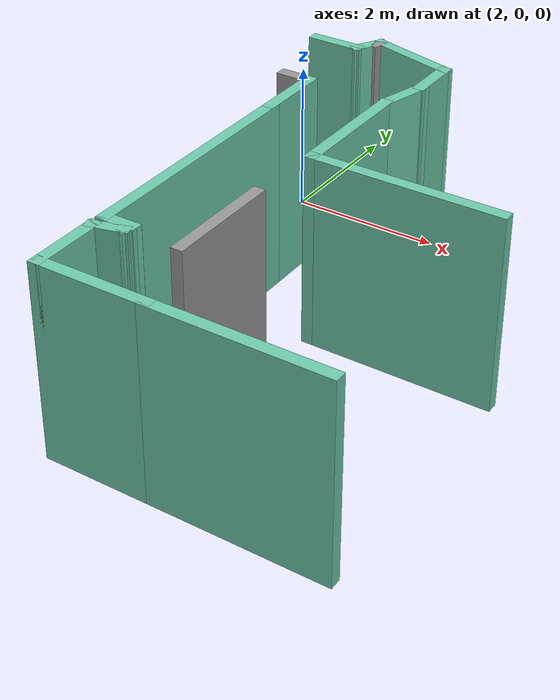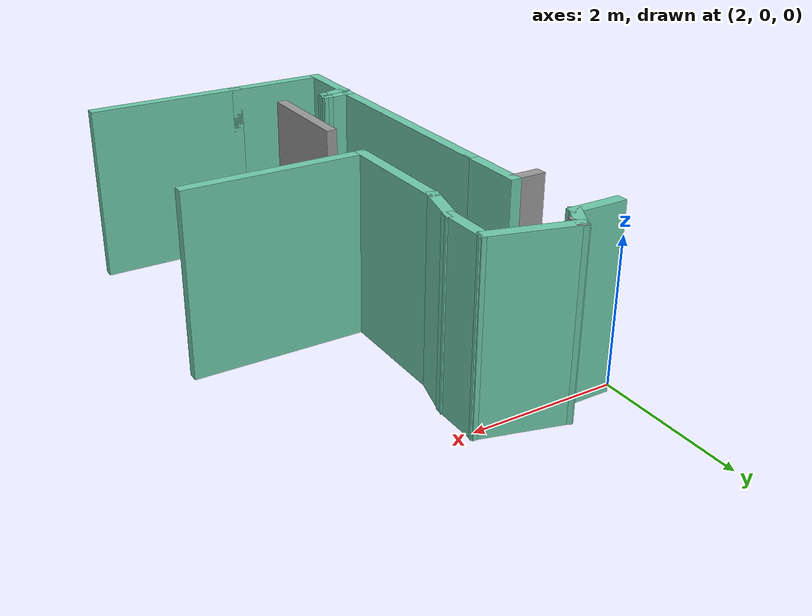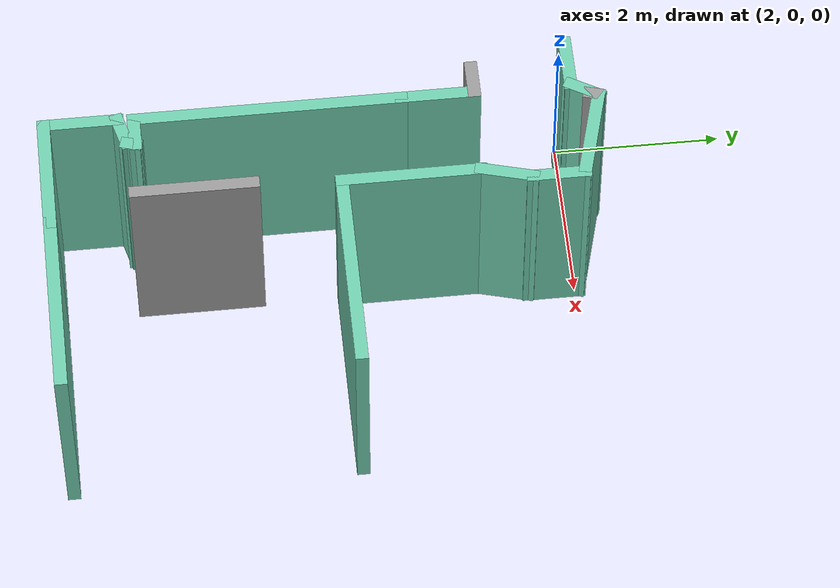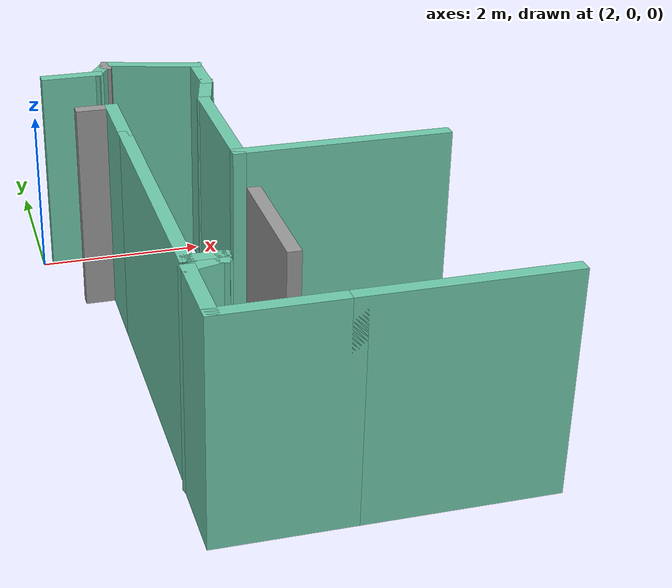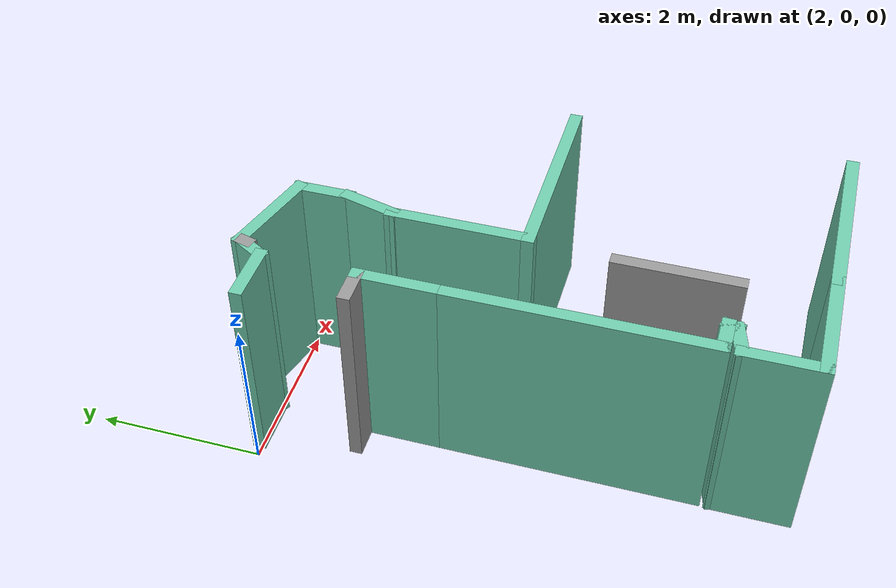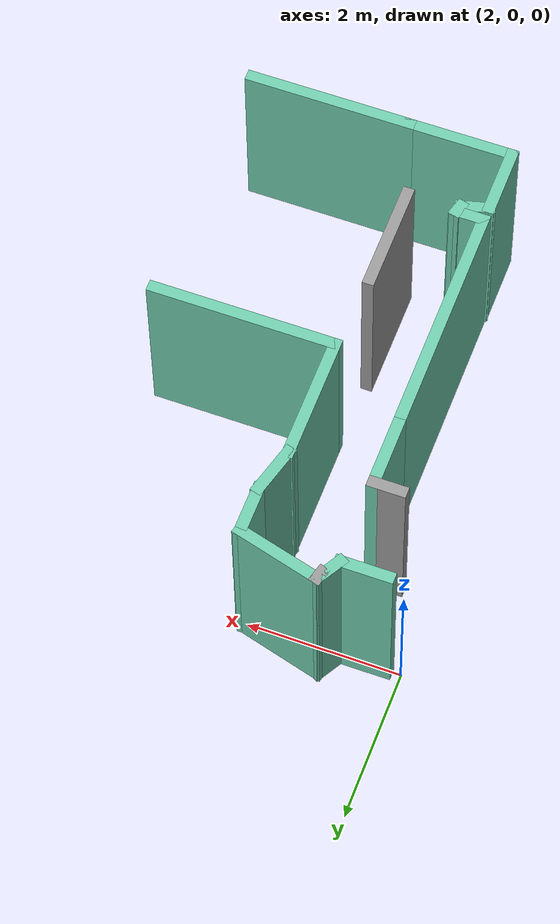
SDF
<sdf version="1.6">
 <world name="default">
  <model name="map_3">
   <pose>0.639107 -0.35531 0 0 -0 0</pose>
   <link name="Wall_100">
    <collision name="Wall_100_Collision">
     <geometry><box><size>1.75 0.15 2.5</size></box></geometry>
     <pose>0 0 1.25 0 -0 0</pose>
    </collision>
    <visual name="Wall_100_Visual">
     <pose>0 0 1.25 0 -0 0</pose>
     <geometry><box><size>1.75 0.15 2.5</size></box></geometry>
     <material>
      <script><uri>file://media/materials/scripts/gazebo.material</uri><name>Gazebo/Grey</name></script>
      <ambient>0.435294 0.796078 0.67451 1</ambient>
     </material>
     <meta><layer>0</layer></meta>
    </visual>
    <pose>3.22626 -1.57739 0 0 -0 1.5708</pose>
   </link>
   <link name="Wall_101">
    <collision name="Wall_101_Collision">
     <geometry><box><size>0.75 0.15 2.5</size></box></geometry>
     <pose>0 0 1.25 0 -0 0</pose>
    </collision>
    <visual name="Wall_101_Visual">
     <pose>0 0 1.25 0 -0 0</pose>
     <geometry><box><size>0.75 0.15 2.5</size></box></geometry>
     <material>
      <script><uri>file://media/materials/scripts/gazebo.material</uri><name>Gazebo/Grey</name></script>
      <ambient>0.435294 0.796078 0.67451 1</ambient>
     </material>
     <meta><layer>0</layer></meta>
    </visual>
    <pose>3.30391 -0.487613 0 0 -0 1.309</pose>
   </link>
   <link name="Wall_102">
    <collision name="Wall_102_Collision">
     <geometry><box><size>0.75 0.15 2.5</size></box></geometry>
     <pose>0 0 1.25 0 -0 0</pose>
    </collision>
    <visual name="Wall_102_Visual">
     <pose>0 0 1.25 0 -0 0</pose>
     <geometry><box><size>0.75 0.15 2.5</size></box></geometry>
     <material>
      <script><uri>file://media/materials/scripts/gazebo.material</uri><name>Gazebo/Grey</name></script>
      <ambient>0.435294 0.796078 0.67451 1</ambient>
     </material>
     <meta><layer>0</layer></meta>
    </visual>
    <pose>3.38155 0.102165 0 0 -0 1.5708</pose>
   </link>
   <link name="Wall_103">
    <collision name="Wall_103_Collision">
     <geometry><box><size>1.25 0.15 2.5</size></box></geometry>
     <pose>0 0 1.25 0 -0 0</pose>
    </collision>
    <visual name="Wall_103_Visual">
     <pose>0 0 1.25 0 -0 0</pose>
     <geometry><box><size>1.25 0.15 2.5</size></box></geometry>
     <material>
      <script><uri>file://media/materials/scripts/gazebo.material</uri><name>Gazebo/Grey</name></script>
      <ambient>0.435294 0.796078 0.67451 1</ambient>
     </material>
     <meta><layer>0</layer></meta>
    </visual>
    <pose>2.85029 0.544515 0 0 -0 2.87979</pose>
   </link>
   <link name="Wall_104">
    <collision name="Wall_104_Collision">
     <geometry><box><size>0.25 0.15 2.5</size></box></geometry>
     <pose>0 0 1.25 0 -0 0</pose>
    </collision>
    <visual name="Wall_104_Visual">
     <pose>0 0 1.25 0 -0 0</pose>
     <geometry><box><size>0.25 0.15 2.5</size></box></geometry>
     <material>
      <script><uri>file://media/materials/scripts/gazebo.material</uri><name>Gazebo/Grey</name></script>
      <ambient>1 1 1 1</ambient>
     </material>
     <meta><layer>0</layer></meta>
    </visual>
    <pose>2.30609 0.638569 0 0 -0 -1.8326</pose>
   </link>
   <link name="Wall_108">
    <collision name="Wall_108_Collision">
     <geometry><box><size>0.5 0.15 2.5</size></box></geometry>
     <pose>0 0 1.25 0 -0 0</pose>
    </collision>
    <visual name="Wall_108_Visual">
     <pose>0 0 1.25 0 -0 0</pose>
     <geometry><box><size>0.5 0.15 2.5</size></box></geometry>
     <material>
      <script><uri>file://media/materials/scripts/gazebo.material</uri><name>Gazebo/Grey</name></script>
      <ambient>0.435294 0.796078 0.67451 1</ambient>
     </material>
     <meta><layer>0</layer></meta>
    </visual>
    <pose>2.23154 0.535311 0 0 -0 -2.0944</pose>
   </link>
   <link name="Wall_109">
    <collision name="Wall_109_Collision">
     <geometry><box><size>0.75 0.15 2.5</size></box></geometry>
     <pose>0 0 1.25 0 -0 0</pose>
    </collision>
    <visual name="Wall_109_Visual">
     <pose>0 0 1.25 0 -0 0</pose>
     <geometry><box><size>0.75 0.15 2.5</size></box></geometry>
     <material>
      <script><uri>file://media/materials/scripts/gazebo.material</uri><name>Gazebo/Grey</name></script>
      <ambient>0.435294 0.796078 0.67451 1</ambient>
     </material>
     <meta><layer>0</layer></meta>
    </visual>
    <pose>1.84404 0.383757 0 0 -0 3.14159</pose>
   </link>
   <link name="Wall_130">
    <collision name="Wall_130_Collision">
     <geometry><box><size>1.5 0.15 2.5</size></box></geometry>
     <pose>0 0 1.25 0 -0 0</pose>
    </collision>
    <visual name="Wall_130_Visual">
     <pose>0 0 1.25 0 -0 0</pose>
     <geometry><box><size>1.5 0.15 2.5</size></box></geometry>
     <material>
      <script><uri>file://media/materials/scripts/gazebo.material</uri><name>Gazebo/Grey</name></script>
      <ambient>1 1 1 1</ambient>
     </material>
     <meta><layer>0</layer></meta>
    </visual>
    <pose>3.15108 -4.06181 0 0 -0 -1.5708</pose>
   </link>
   <link name="Wall_89">
    <collision name="Wall_89_Collision">
     <geometry><box><size>0.5 0.15 2.5</size></box></geometry>
     <pose>0 0 1.25 0 -0 0</pose>
    </collision>
    <visual name="Wall_89_Visual">
     <pose>0 0 1.25 0 -0 0</pose>
     <geometry><box><size>0.5 0.15 2.5</size></box></geometry>
     <material>
      <script><uri>file://media/materials/scripts/gazebo.material</uri><name>Gazebo/Grey</name></script>
      <ambient>1 1 1 1</ambient>
     </material>
     <meta><layer>0</layer></meta>
    </visual>
    <pose>1.96522 -0.740211 0 0 -0 0</pose>
   </link>
   <link name="Wall_90">
    <collision name="Wall_90_Collision">
     <geometry><box><size>1 0.15 2.5</size></box></geometry>
     <pose>0 0 1.25 0 -0 0</pose>
    </collision>
    <visual name="Wall_90_Visual">
     <pose>0 0 1.25 0 -0 0</pose>
     <geometry><box><size>1 0.15 2.5</size></box></geometry>
     <material>
      <script><uri>file://media/materials/scripts/gazebo.material</uri><name>Gazebo/Grey</name></script>
      <ambient>0.435294 0.796078 0.67451 1</ambient>
     </material>
     <meta><layer>0</layer></meta>
    </visual>
    <pose>2.14022 -1.16521 0 0 -0 -1.5708</pose>
   </link>
   <link name="Wall_91">
    <collision name="Wall_91_Collision">
     <geometry><box><size>3.25 0.15 2.5</size></box></geometry>
     <pose>0 0 1.25 0 -0 0</pose>
    </collision>
    <visual name="Wall_91_Visual">
     <pose>0 0 1.25 0 -0 0</pose>
     <geometry><box><size>3.25 0.15 2.5</size></box></geometry>
     <material>
      <script><uri>file://media/materials/scripts/gazebo.material</uri><name>Gazebo/Grey</name></script>
      <ambient>0.435294 0.796078 0.67451 1</ambient>
     </material>
     <meta><layer>0</layer></meta>
    </visual>
    <pose>2.14022 -3.14021 0 0 -0 -1.5708</pose>
   </link>
   <link name="Wall_92">
    <collision name="Wall_92_Collision">
     <geometry><box><size>0.5 0.15 2.5</size></box></geometry>
     <pose>0 0 1.25 0 -0 0</pose>
    </collision>
    <visual name="Wall_92_Visual">
     <pose>0 0 1.25 0 -0 0</pose>
     <geometry><box><size>0.5 0.15 2.5</size></box></geometry>
     <material>
      <script><uri>file://media/materials/scripts/gazebo.material</uri><name>Gazebo/Grey</name></script>
      <ambient>0.435294 0.796078 0.67451 1</ambient>
     </material>
     <meta><layer>0</layer></meta>
    </visual>
    <pose>2.31522 -4.69021 0 0 -0 0</pose>
   </link>
   <link name="Wall_93">
    <collision name="Wall_93_Collision">
     <geometry><box><size>0.25 0.15 2.5</size></box></geometry>
     <pose>0 0 1.25 0 -0 0</pose>
    </collision>
    <visual name="Wall_93_Visual">
     <pose>0 0 1.25 0 -0 0</pose>
     <geometry><box><size>0.25 0.15 2.5</size></box></geometry>
     <material>
      <script><uri>file://media/materials/scripts/gazebo.material</uri><name>Gazebo/Grey</name></script>
      <ambient>0.435294 0.796078 0.67451 1</ambient>
     </material>
     <meta><layer>0</layer></meta>
    </visual>
    <pose>2.47728 -4.73851 0 0 -0 -1.8326</pose>
   </link>
   <link name="Wall_94">
    <collision name="Wall_94_Collision">
     <geometry><box><size>0.5 0.15 2.5</size></box></geometry>
     <pose>0 0 1.25 0 -0 0</pose>
    </collision>
    <visual name="Wall_94_Visual">
     <pose>0 0 1.25 0 -0 0</pose>
     <geometry><box><size>0.5 0.15 2.5</size></box></geometry>
     <material>
      <script><uri>file://media/materials/scripts/gazebo.material</uri><name>Gazebo/Grey</name></script>
      <ambient>0.435294 0.796078 0.67451 1</ambient>
     </material>
     <meta><layer>0</layer></meta>
    </visual>
    <pose>2.2953 -4.8321 0 0 -0 -2.87979</pose>
   </link>
   <link name="Wall_95">
    <collision name="Wall_95_Collision">
     <geometry><box><size>1 0.15 2.5</size></box></geometry>
     <pose>0 0 1.25 0 -0 0</pose>
    </collision>
    <visual name="Wall_95_Visual">
     <pose>0 0 1.25 0 -0 0</pose>
     <geometry><box><size>1 0.15 2.5</size></box></geometry>
     <material>
      <script><uri>file://media/materials/scripts/gazebo.material</uri><name>Gazebo/Grey</name></script>
      <ambient>0.435294 0.796078 0.67451 1</ambient>
     </material>
     <meta><layer>0</layer></meta>
    </visual>
    <pose>2.12626 -5.30239 0 0 -0 -1.5708</pose>
   </link>
   <link name="Wall_96">
    <collision name="Wall_96_Collision">
     <geometry><box><size>1.5 0.15 2.5</size></box></geometry>
     <pose>0 0 1.25 0 -0 0</pose>
    </collision>
    <visual name="Wall_96_Visual">
     <pose>0 0 1.25 0 -0 0</pose>
     <geometry><box><size>1.5 0.15 2.5</size></box></geometry>
     <material>
      <script><uri>file://media/materials/scripts/gazebo.material</uri><name>Gazebo/Grey</name></script>
      <ambient>0.435294 0.796078 0.67451 1</ambient>
     </material>
     <meta><layer>0</layer></meta>
    </visual>
    <pose>2.80126 -5.72739 0 0 -0 0</pose>
   </link>
   <link name="Wall_97">
    <collision name="Wall_97_Collision">
     <geometry><box><size>2.25 0.15 2.5</size></box></geometry>
     <pose>0 0 1.25 0 -0 0</pose>
    </collision>
    <visual name="Wall_97_Visual">
     <pose>0 0 1.25 0 -0 0</pose>
     <geometry><box><size>2.25 0.15 2.5</size></box></geometry>
     <material>
      <script><uri>file://media/materials/scripts/gazebo.material</uri><name>Gazebo/Grey</name></script>
      <ambient>0.435294 0.796078 0.67451 1</ambient>
     </material>
     <meta><layer>0</layer></meta>
    </visual>
    <pose>4.52626 -5.72739 0 0 -0 0</pose>
   </link>
   <link name="Wall_99">
    <collision name="Wall_99_Collision">
     <geometry><box><size>2.5 0.15 2.5</size></box></geometry>
     <pose>0 0 1.25 0 -0 0</pose>
    </collision>
    <visual name="Wall_99_Visual">
     <pose>0 0 1.25 0 -0 0</pose>
     <geometry><box><size>2.5 0.15 2.5</size></box></geometry>
     <material>
      <script><uri>file://media/materials/scripts/gazebo.material</uri><name>Gazebo/Grey</name></script>
      <ambient>0.435294 0.796078 0.67451 1</ambient>
     </material>
     <meta><layer>0</layer></meta>
    </visual>
    <pose>4.40126 -2.37739 0 0 -0 3.14159</pose>
   </link>
   <static>1</static>
  </model>
 </world>
</sdf>
